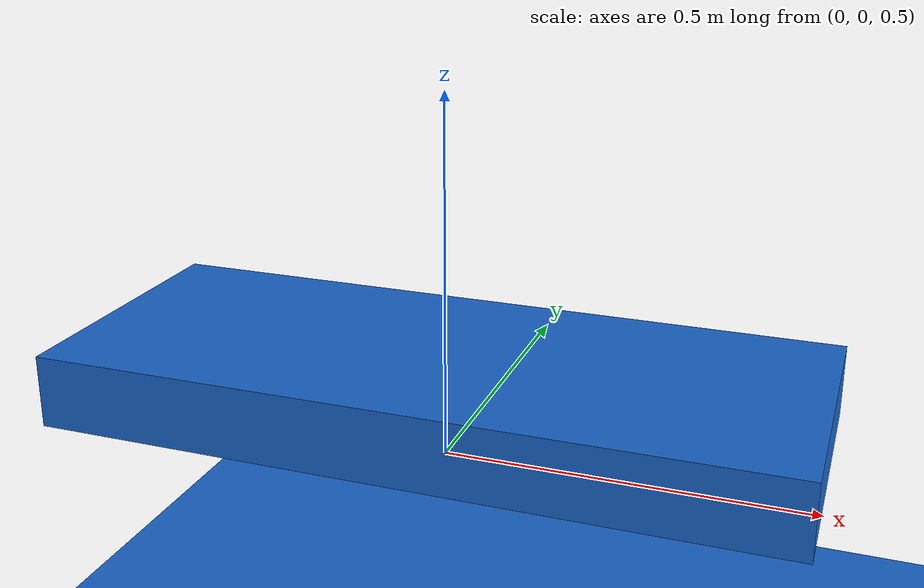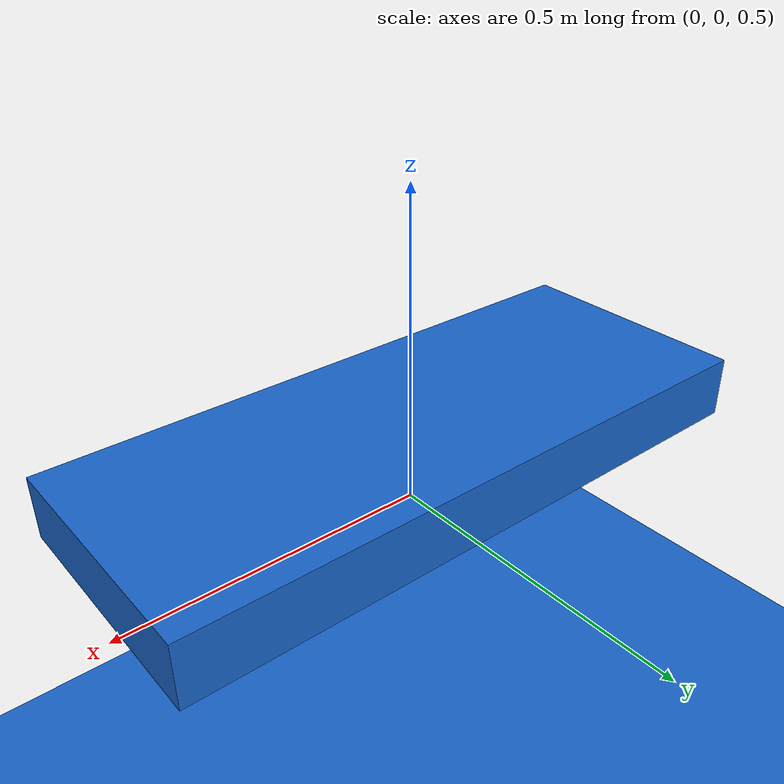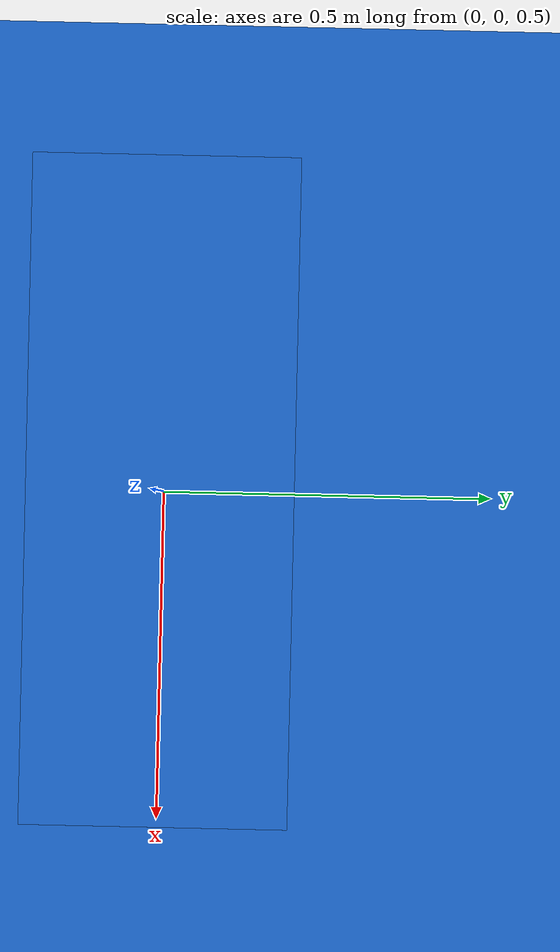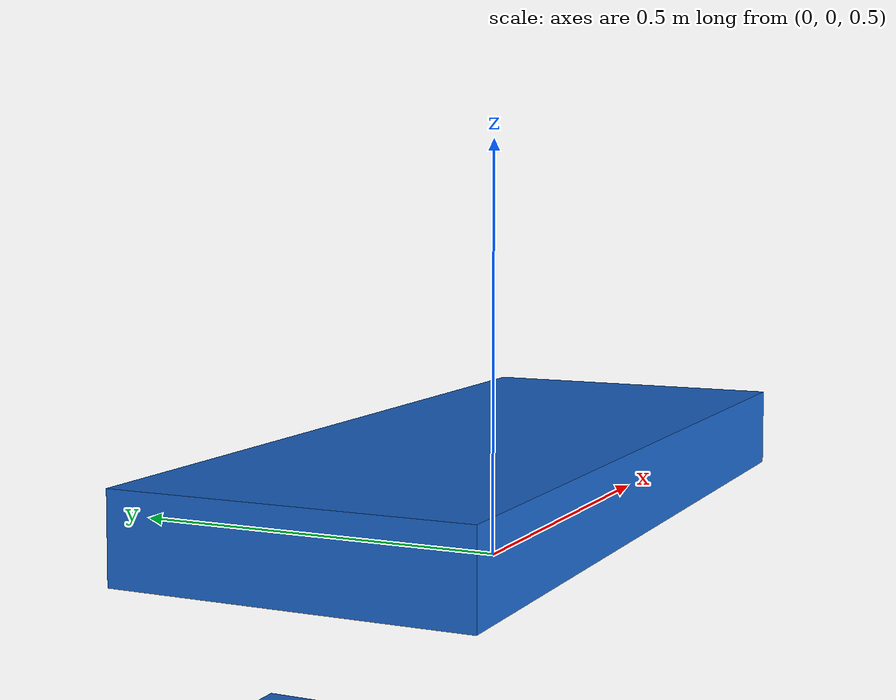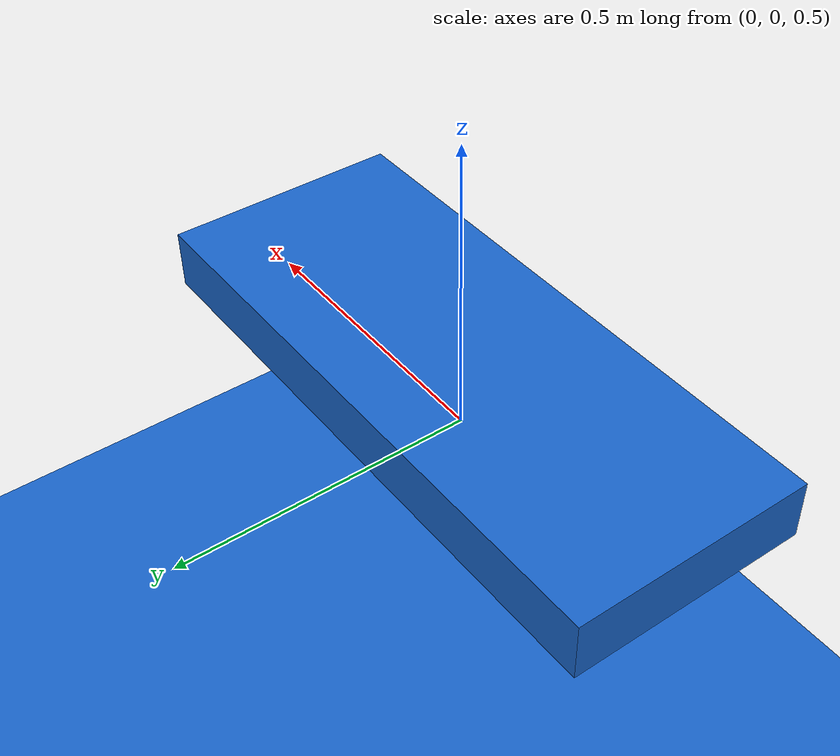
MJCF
<mujoco model="waterboard_robot">
  <compiler angle="radian" eulerseq="xyz" meshdir="meshes" texturedir="textures"/>
  <option timestep="0.002" gravity="0 0 -9.81" iterations="50"/>
  <default>
    <geom type="capsule" size="0.05 0.2" mass="0.2" friction="1 0.005 0.0001" condim="3"/>
    <motor gear="100" ctrllimited="true" ctrlrange="-1 1"/>
  </default>
  <asset>
    <material name="board_mat" rgba="0.1 0.4 0.8 1"/>
  </asset>
  <worldbody>
    <geom name="floor" type="plane" size="20 20 0.1" condim="3" material="board_mat"/>
    <body name="board" pos="0 0 0.6">
      <!-- slide joint provides vertical actuation; no freejoint to stay within 6 DOFs -->
      <joint name="thruster_joint" type="slide" axis="0 0 1" range="-0.5 0.5" damping="0.1"/>
      <geom name="board_geom" type="box" size="0.5 0.2 0.05" material="board_mat" mass="5"/>
    </body>
  </worldbody>
  <actuator>
    <motor name="thruster" joint="thruster_joint" gear="800" ctrllimited="true" ctrlrange="-1 1"/>
  </actuator>
</mujoco>
